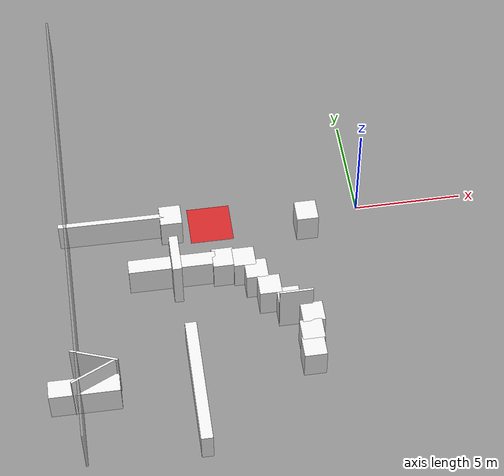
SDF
<sdf version="1.7">
 <world name="default">
  <model name="init_area">
   <static>1</static>
   <link name="init_area_link">
    <visual name="init_area_visual">
     <pose>-7.0 0.0 0.001 0 -0 0</pose>
     <geometry><box><size>2.0 2.0 0.001</size></box></geometry>
     <material>
      <script><uri>file://media/materials/scripts/gazebo.material</uri><name>Gazebo/Red</name></script>
      <ambient>0.8 0.2 0.2 0.3</ambient>
      <diffuse>0.8 0.2 0.2 0.3</diffuse>
     </material>
    </visual>
   </link>
  </model>
  <model name="box_4">
   <pose>-13.7117 -0.05 1.25 0 -0 0</pose>
   <static>1</static>
   <link name="link">
    <collision name="collision"><geometry><box><size>0.1 24.1 2.5</size></box></geometry></collision>
    <visual name="visual">
     <geometry><box><size>0.1 24.1 2.5</size></box></geometry>
     <material>
      <script><name>Gazebo/GreyTransparent</name><uri>file://media/materials/scripts/gazebo.material</uri></script>
     </material>
    </visual>
   </link>
  </model>
  <model name="box_9_clone_clone_0">
   <pose>-3.46298 -8.44795 0.75 0 -0 0</pose>
   <static>1</static>
   <link name="link">
    <collision name="collision"><geometry><box><size>1 1 1.5</size></box></geometry></collision>
    <visual name="visual">
     <geometry><box><size>1 1 1.5</size></box></geometry>
     <material>
      <script><name>Gazebo/White</name><uri>file://media/materials/scripts/gazebo.material</uri></script>
     </material>
    </visual>
   </link>
  </model>
  <model name="box_9_clone_clone_1">
   <pose>-3.40186 -7.56359 0.75 0 -0 0</pose>
   <static>1</static>
   <link name="link">
    <collision name="collision"><geometry><box><size>1 1 1.5</size></box></geometry></collision>
    <visual name="visual">
     <geometry><box><size>1 1 1.5</size></box></geometry>
     <material>
      <script><name>Gazebo/White</name><uri>file://media/materials/scripts/gazebo.material</uri></script>
     </material>
    </visual>
   </link>
  </model>
  <model name="box_9_clone_clone_2">
   <pose>-3.23885 -6.64819 0.75 0 -0 0</pose>
   <static>1</static>
   <link name="link">
    <collision name="collision"><geometry><box><size>1 1 1.5</size></box></geometry></collision>
    <visual name="visual">
     <geometry><box><size>1 1 1.5</size></box></geometry>
     <material>
      <script><name>Gazebo/White</name><uri>file://media/materials/scripts/gazebo.material</uri></script>
     </material>
    </visual>
   </link>
  </model>
  <model name="box_9_clone_clone_7_clone_clone_1">
   <pose>-9.08212 -3.08785 0.75 0 -0 0</pose>
   <static>1</static>
   <link name="link">
    <collision name="collision"><geometry><box><size>3.96159 0.707777 1.5</size></box></geometry></collision>
    <visual name="visual">
     <geometry><box><size>3.96159 0.707777 1.5</size></box></geometry>
     <material>
      <script><name>Gazebo/White</name><uri>file://media/materials/scripts/gazebo.material</uri></script>
     </material>
    </visual>
   </link>
  </model>
  <model name="box_9_clone_clone_7_clone_clone_2">
   <pose>-5.82661 -3.21952 0.75 0 -0 0</pose>
   <static>1</static>
   <link name="link">
    <collision name="collision"><geometry><box><size>1 1 1.5</size></box></geometry></collision>
    <visual name="visual">
     <geometry><box><size>1 1 1.5</size></box></geometry>
     <material>
      <script><name>Gazebo/White</name><uri>file://media/materials/scripts/gazebo.material</uri></script>
     </material>
    </visual>
   </link>
  </model>
  <model name="box_9_clone_clone_7_clone_clone_3">
   <pose>-5.3619 -3.95424 0.75 0 -0 0</pose>
   <static>1</static>
   <link name="link">
    <collision name="collision"><geometry><box><size>1 1 1.5</size></box></geometry></collision>
    <visual name="visual">
     <geometry><box><size>1 1 1.5</size></box></geometry>
     <material>
      <script><name>Gazebo/White</name><uri>file://media/materials/scripts/gazebo.material</uri></script>
     </material>
    </visual>
   </link>
  </model>
  <model name="box_9_clone_clone_7_clone_clone_4">
   <pose>-4.89443 -4.91365 0.75 0 -0 0</pose>
   <static>1</static>
   <link name="link">
    <collision name="collision"><geometry><box><size>1 1 1.5</size></box></geometry></collision>
    <visual name="visual">
     <geometry><box><size>1 1 1.5</size></box></geometry>
     <material>
      <script><name>Gazebo/White</name><uri>file://media/materials/scripts/gazebo.material</uri></script>
     </material>
    </visual>
   </link>
  </model>
  <model name="box_9_clone_clone_7_clone_clone_5">
   <pose>-4.14032 -5.67151 0.75 0 -0 0</pose>
   <static>1</static>
   <link name="link">
    <collision name="collision"><geometry><box><size>1 1 1.5</size></box></geometry></collision>
    <visual name="visual">
     <geometry><box><size>1 1 1.5</size></box></geometry>
     <material>
      <script><name>Gazebo/White</name><uri>file://media/materials/scripts/gazebo.material</uri></script>
     </material>
    </visual>
   </link>
  </model>
  <model name="box_8_clone_clone_4_clone_2_clone">
   <pose>-3.89284 -6.16269 1.25 0 -0 0</pose>
   <static>1</static>
   <link name="link">
    <collision name="collision"><geometry><box><size>1.5 0.1 2.5</size></box></geometry></collision>
    <visual name="visual">
     <geometry><box><size>1.5 0.1 2.5</size></box></geometry>
     <material>
      <script><name>Gazebo/White</name><uri>file://media/materials/scripts/gazebo.material</uri></script>
     </material>
    </visual>
   </link>
  </model>
  <model name="box_9_clone_clone_5_clone_2_clone_0_clone_2_clone_clone">
   <pose>-8.6325 -9.41484 0.75 0 -0 0</pose>
   <static>1</static>
   <link name="link">
    <collision name="collision"><geometry><box><size>0.517731 5.90244 1.5</size></box></geometry></collision>
    <visual name="visual">
     <geometry><box><size>0.517731 5.90244 1.5</size></box></geometry>
     <material>
      <script><name>Gazebo/White</name><uri>file://media/materials/scripts/gazebo.material</uri></script>
     </material>
    </visual>
   </link>
  </model>
  <model name="box_6_clone_clone_clone_0_clone_0_clone_2_clone">
   <pose>-12.9412 -8.2324 1.25 0 0 -1.91939</pose>
   <static>1</static>
   <link name="link">
    <collision name="collision"><geometry><box><size>0.1 2.13425 2.5</size></box></geometry></collision>
    <visual name="visual">
     <geometry><box><size>0.1 2.13425 2.5</size></box></geometry>
     <material>
      <script><name>Gazebo/White</name><uri>file://media/materials/scripts/gazebo.material</uri></script>
     </material>
    </visual>
   </link>
  </model>
  <model name="box_6_clone_clone_clone_0_clone_0_clone_2_clone_clone">
   <pose>-13.0267 -9.02916 1.25 0 0 -1.13074</pose>
   <static>1</static>
   <link name="link">
    <collision name="collision"><geometry><box><size>0.1 2.13426 2.5</size></box></geometry></collision>
    <visual name="visual">
     <geometry><box><size>0.1 2.13426 2.5</size></box></geometry>
     <material>
      <script><name>Gazebo/White</name><uri>file://media/materials/scripts/gazebo.material</uri></script>
     </material>
    </visual>
   </link>
  </model>
  <model name="box_9_clone_clone_5_clone_clone_clone">
   <pose>-2.59272 -0.967922 0.75 0 -0 0</pose>
   <static>1</static>
   <link name="link">
    <collision name="collision"><geometry><box><size>1 1.06509 1.5</size></box></geometry></collision>
    <visual name="visual">
     <geometry><box><size>1 1.06509 1.5</size></box></geometry>
     <material>
      <script><name>Gazebo/White</name><uri>file://media/materials/scripts/gazebo.material</uri></script>
     </material>
    </visual>
   </link>
  </model>
  <model name="box_9_clone_clone_5_clone_2_clone_0_clone_2_clone_0_clone_clone_0">
   <pose>-11.4677 -0.34019 0.75 0 -0 1.56359</pose>
   <static>1</static>
   <link name="link">
    <collision name="collision"><geometry><box><size>0.238975 5.14966 1.5</size></box></geometry></collision>
    <visual name="visual">
     <geometry><box><size>0.238975 5.14966 1.5</size></box></geometry>
     <material>
      <script><name>Gazebo/White</name><uri>file://media/materials/scripts/gazebo.material</uri></script>
     </material>
    </visual>
   </link>
  </model>
  <model name="box_9_clone_clone_5_clone_clone_clone_clone">
   <pose>-8.86383 -0.367386 0.75 0 -0 0</pose>
   <static>1</static>
   <link name="link">
    <collision name="collision"><geometry><box><size>1 1.06509 1.5</size></box></geometry></collision>
    <visual name="visual">
     <geometry><box><size>1 1.06509 1.5</size></box></geometry>
     <material>
      <script><name>Gazebo/White</name><uri>file://media/materials/scripts/gazebo.material</uri></script>
     </material>
    </visual>
   </link>
  </model>
  <model name="box_6_clone_clone_4_clone_clone_1_clone">
   <pose>-8.92093 -3.32073 1.25 0 0 -0.001309</pose>
   <static>1</static>
   <link name="link">
    <collision name="collision"><geometry><box><size>0.407547 1.85352 2.5</size></box></geometry></collision>
    <visual name="visual">
     <geometry><box><size>0.407547 1.85352 2.5</size></box></geometry>
     <material>
      <script><name>Gazebo/White</name><uri>file://media/materials/scripts/gazebo.material</uri></script>
     </material>
    </visual>
   </link>
  </model>
  <model name="box_9_clone_clone_5_clone_2_clone_0_clone_2_clone_0_clone_clone_clone_clone_0_clone">
   <pose>-13.5014 -9.06923 0.75 0 -0 1.56352</pose>
   <static>1</static>
   <link name="link">
    <collision name="collision"><geometry><box><size>0.843798 3.07714 1.5</size></box></geometry></collision>
    <visual name="visual">
     <geometry><box><size>0.843798 3.07714 1.5</size></box></geometry>
     <material>
      <script><name>Gazebo/White</name><uri>file://media/materials/scripts/gazebo.material</uri></script>
     </material>
    </visual>
   </link>
  </model>
  <model name="box_9_clone_clone_7_clone_clone_2_clone">
   <pose>-6.7523 -3.12345 0.75 0 -0 0</pose>
   <static>1</static>
   <link name="link">
    <collision name="collision"><geometry><box><size>1 1 1.5</size></box></geometry></collision>
    <visual name="visual">
     <geometry><box><size>1 1 1.5</size></box></geometry>
     <material>
      <script><name>Gazebo/White</name><uri>file://media/materials/scripts/gazebo.material</uri></script>
     </material>
    </visual>
   </link>
  </model>
 </world>
</sdf>
